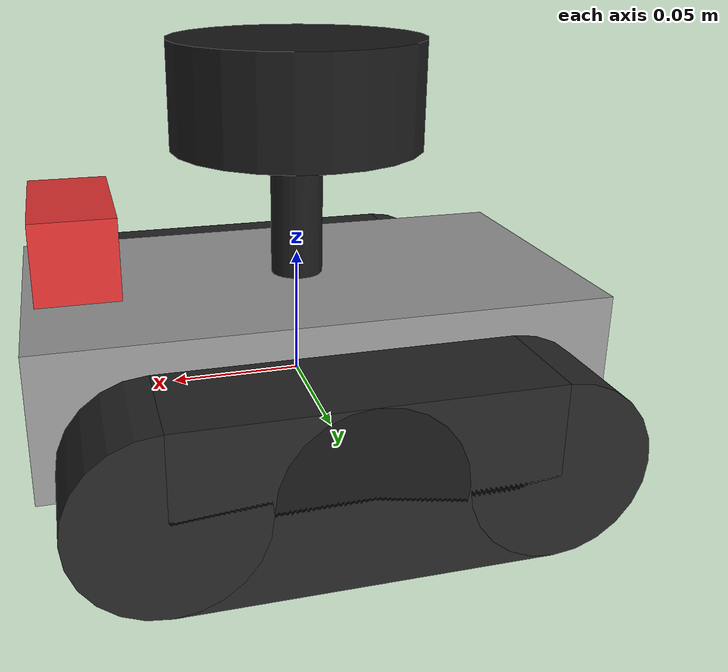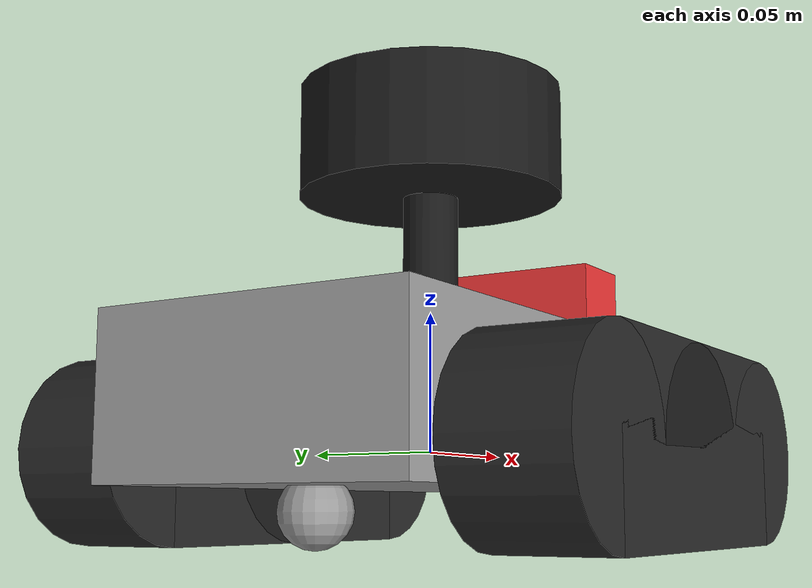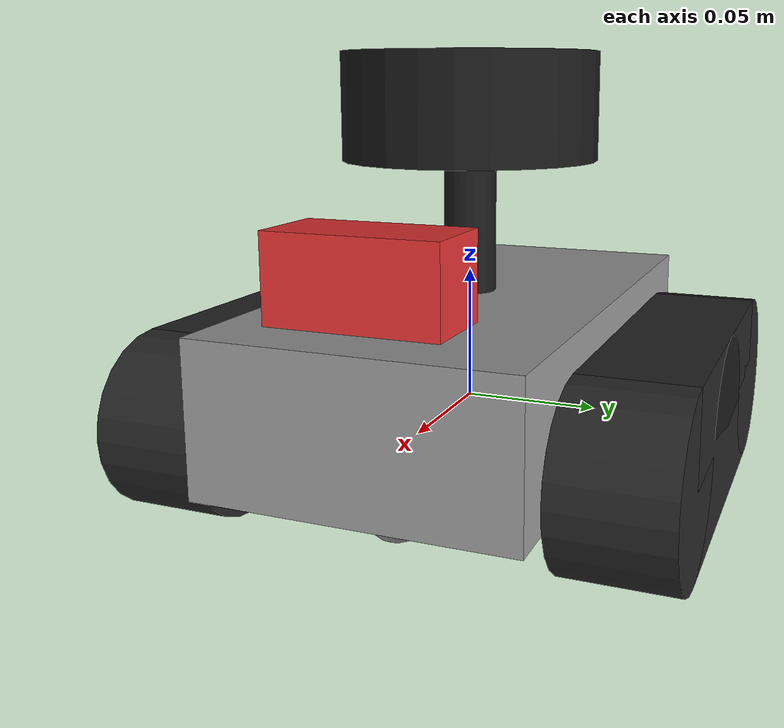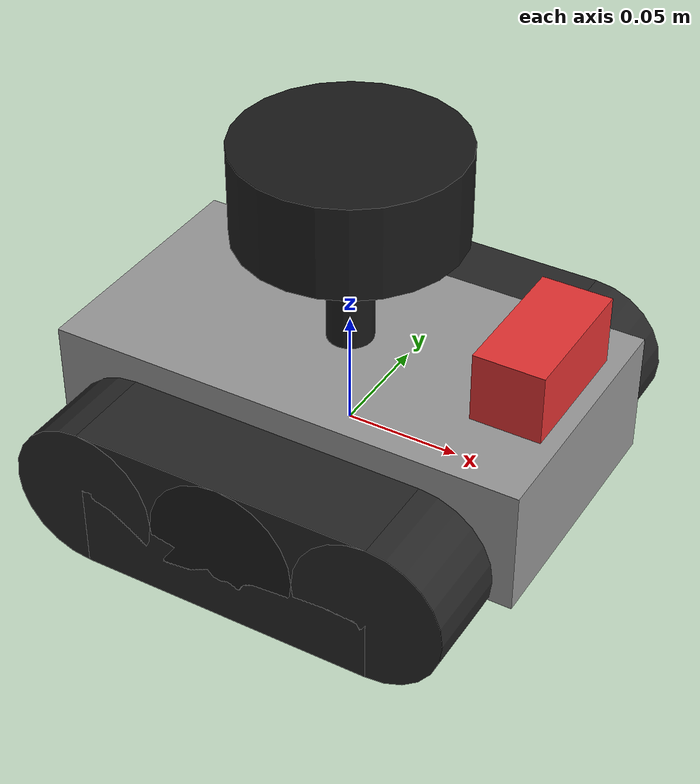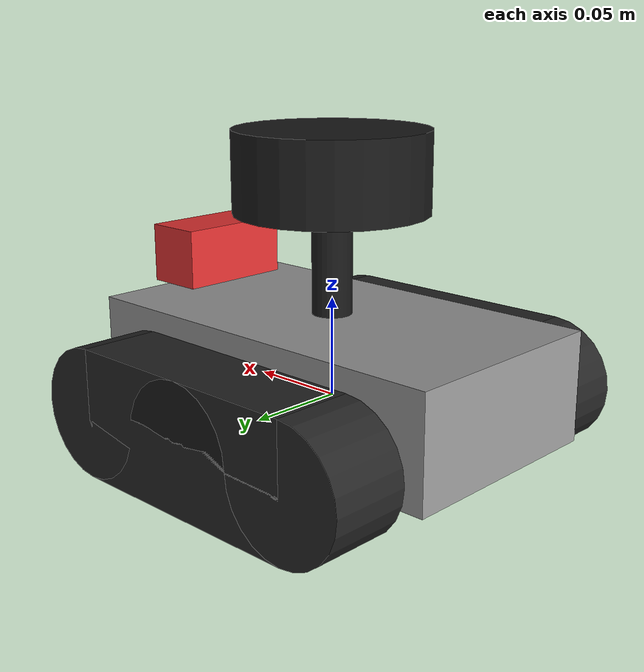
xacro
<?xml version="1.0"?>
<robot xmlns:xacro="http://www.ros.org/wiki/xacro" name="robot">

    <!-- ============================================================
          REAL TANK MEASUREMENTS (all in METRES)
         ============================================================ -->
    <xacro:property name="track_length"     value="0.195"/>
    <xacro:property name="track_width"      value="0.04"/>
    <xacro:property name="track_height"     value="0.065"/>
    <xacro:property name="track_separation" value="0.16"/>

    <xacro:property name="body_length"      value="0.21"/>
    <xacro:property name="body_width"       value="0.115"/>
    <xacro:property name="body_height"      value="0.055"/>
    <xacro:property name="ground_clearance" value="0.02"/>
    <xacro:property name="body_mass"        value="1.0"/>

    <!-- Calculated from the numbers above. Do not edit. -->
    <xacro:property name="wheel_radius"     value="${track_height/2}"/>
    <xacro:property name="skid_radius"      value="0.012"/>
    <xacro:property name="body_z"           value="${-wheel_radius + ground_clearance + body_height/2}"/>
    <xacro:property name="body_top_z"       value="${-wheel_radius + ground_clearance + body_height}"/>

    <!-- ===== Colours ===== -->
    <material name="blue"><color rgba="0.2 0.4 0.9 1"/></material>
    <material name="black"><color rgba="0.1 0.1 0.1 1"/></material>
    <material name="red"><color rgba="0.9 0.2 0.2 1"/></material>
    <material name="gray"><color rgba="0.6 0.6 0.6 1"/></material>
    <material name="dark"><color rgba="0.15 0.15 0.15 1"/></material>

    <!-- ===== Helper macros for inertia ===== -->
    <xacro:macro name="box_inertia" params="m x y z">
        <inertia ixx="${m*(y*y+z*z)/12}" ixy="0" ixz="0"
                 iyy="${m*(x*x+z*z)/12}" iyz="0"
                 izz="${m*(x*x+y*y)/12}"/>
    </xacro:macro>

    <xacro:macro name="cylinder_inertia" params="m r h">
        <inertia ixx="${m*(3*r*r+h*h)/12}" ixy="0" ixz="0"
                 iyy="${m*(3*r*r+h*h)/12}" iyz="0"
                 izz="${m*r*r/2}"/>
    </xacro:macro>

    <!-- ===== BODY ===== -->
    <link name="base_link">
        <visual>
            <origin xyz="0 0 ${body_z}"/>
            <geometry><box size="${body_length} ${body_width} ${body_height}"/></geometry>
            <material name="gray"/>
        </visual>
        <collision>
            <origin xyz="0 0 ${body_z}"/>
            <geometry><box size="${body_length} ${body_width} ${body_height}"/></geometry>
        </collision>
        <inertial>
            <origin xyz="0 0 ${body_z}"/>
            <mass value="${body_mass}"/>
            <xacro:box_inertia m="${body_mass}" x="${body_length}" y="${body_width}" z="${body_height}"/>
        </inertial>

        <!-- post that holds the lidar above the body (visual only) -->
        <visual>
            <origin xyz="0 0 ${body_top_z + 0.025}"/>
            <geometry><cylinder radius="0.01" length="0.05"/></geometry>
            <material name="black"/>
        </visual>
    </link>

    <!-- ===== SKIDS (two small frictionless balls, front and back) ===== -->
    <joint name="front_skid_joint" type="fixed">
        <parent link="base_link"/>
        <child link="front_skid"/>
        <origin xyz="${track_length/2 - 0.03} 0 ${-wheel_radius + skid_radius}"/>
    </joint>

    <link name="front_skid">
        <visual>
            <geometry><sphere radius="${skid_radius}"/></geometry>
            <material name="gray"/>
        </visual>
        <collision>
            <geometry><sphere radius="${skid_radius}"/></geometry>
        </collision>
        <inertial>
            <mass value="0.02"/>
            <inertia ixx="1.2e-6" ixy="0" ixz="0" iyy="1.2e-6" iyz="0" izz="1.2e-6"/>
        </inertial>
    </link>

    <joint name="back_skid_joint" type="fixed">
        <parent link="base_link"/>
        <child link="back_skid"/>
        <origin xyz="${-(track_length/2 - 0.03)} 0 ${-wheel_radius + skid_radius}"/>
    </joint>

    <link name="back_skid">
        <visual>
            <geometry><sphere radius="${skid_radius}"/></geometry>
            <material name="gray"/>
        </visual>
        <collision>
            <geometry><sphere radius="${skid_radius}"/></geometry>
        </collision>
        <inertial>
            <mass value="0.02"/>
            <inertia ixx="1.2e-6" ixy="0" ixz="0" iyy="1.2e-6" iyz="0" izz="1.2e-6"/>
        </inertial>
    </link>
    <!-- ===== DRIVE WHEELS (hidden inside the tracks) ===== -->
    <joint name="left_wheel_joint" type="continuous">
        <parent link="base_link"/>
        <child link="left_wheel"/>
        <origin xyz="0 ${track_separation/2} 0" rpy="-1.5708 0 0"/>
        <axis xyz="0 0 1"/>
    </joint>

    <link name="left_wheel">
        <visual>
            <geometry><cylinder radius="${wheel_radius}" length="${track_width}"/></geometry>
            <material name="black"/>
        </visual>
        <collision>
            <geometry><cylinder radius="${wheel_radius}" length="${track_width}"/></geometry>
        </collision>
        <inertial>
            <mass value="0.1"/>
            <xacro:cylinder_inertia m="0.1" r="${wheel_radius}" h="${track_width}"/>
        </inertial>
    </link>

    <joint name="right_wheel_joint" type="continuous">
        <parent link="base_link"/>
        <child link="right_wheel"/>
        <origin xyz="0 ${-track_separation/2} 0" rpy="1.5708 0 0"/>
        <axis xyz="0 0 -1"/>
    </joint>

    <link name="right_wheel">
        <visual>
            <geometry><cylinder radius="${wheel_radius}" length="${track_width}"/></geometry>
            <material name="black"/>
        </visual>
        <collision>
            <geometry><cylinder radius="${wheel_radius}" length="${track_width}"/></geometry>
        </collision>
        <inertial>
            <mass value="0.1"/>
            <xacro:cylinder_inertia m="0.1" r="${wheel_radius}" h="${track_width}"/>
        </inertial>
    </link>

    <!-- ===== TRACKS (looks only, no collision) ===== -->
    <xacro:macro name="track" params="name y">
        <joint name="${name}_track_joint" type="fixed">
            <parent link="base_link"/>
            <child link="${name}_track"/>
            <origin xyz="0 ${y} 0"/>
        </joint>

        <link name="${name}_track">
            <visual>
                <geometry><box size="${track_length - 2*wheel_radius} ${track_width} ${track_height}"/></geometry>
                <material name="dark"/>
            </visual>
            <visual>
                <origin xyz="${track_length/2 - wheel_radius} 0 0" rpy="1.5708 0 0"/>
                <geometry><cylinder radius="${wheel_radius}" length="${track_width}"/></geometry>
                <material name="dark"/>
            </visual>
            <visual>
                <origin xyz="${-(track_length/2 - wheel_radius)} 0 0" rpy="1.5708 0 0"/>
                <geometry><cylinder radius="${wheel_radius}" length="${track_width}"/></geometry>
                <material name="dark"/>
            </visual>
            <inertial>
                <mass value="0.001"/>
                <inertia ixx="1e-6" ixy="0" ixz="0" iyy="1e-6" iyz="0" izz="1e-6"/>
            </inertial>
        </link>
    </xacro:macro>

    <xacro:track name="left"  y="${track_separation/2}"/>
    <xacro:track name="right" y="${-track_separation/2}"/>

    <!-- ===== CAMERA (front, on top of the body) ===== -->
    <joint name="camera_joint" type="fixed">
        <parent link="base_link"/>
        <child link="camera_link"/>
        <origin xyz="${body_length/2 - 0.02} 0 ${body_top_z + 0.02}"/>
    </joint>

    <link name="camera_link">
        <visual>
            <geometry><box size="0.03 0.06 0.03"/></geometry>
            <material name="red"/>
        </visual>
        <inertial>
            <mass value="0.02"/>
            <xacro:box_inertia m="0.02" x="0.03" y="0.06" z="0.03"/>
        </inertial>
    </link>

    <joint name="camera_optical_joint" type="fixed">
        <parent link="camera_link"/>
        <child link="camera_link_optical"/>
        <origin xyz="0 0 0" rpy="-1.5707963 0 -1.5707963"/>
    </joint>

    <link name="camera_link_optical"></link>

    <!-- ===== LIDAR (RPLIDAR A1) ===== -->
    <joint name="laser_joint" type="fixed">
        <parent link="base_link"/>
        <child link="laser_frame"/>
        <origin xyz="0 0 ${body_top_z + 0.07}" rpy="0 0 0"/>
    </joint>

    <link name="laser_frame">
        <visual>
            <geometry><cylinder radius="0.048" length="0.04"/></geometry>
            <material name="black"/>
        </visual>
        <collision>
            <geometry><cylinder radius="0.048" length="0.04"/></geometry>
        </collision>
        <inertial>
            <mass value="0.17"/>
            <xacro:cylinder_inertia m="0.17" r="0.048" h="0.04"/>
        </inertial>
    </link>

    <!-- ===== GAZEBO SETTINGS ===== -->
    <!-- base_link only touches the ground with the two skids, so low friction here -->
    <gazebo reference="base_link">
        <material>Gazebo/Grey</material>
        <mu1>0.001</mu1>
        <mu2>0.001</mu2>
    </gazebo>

    <gazebo reference="front_skid">
        <material>Gazebo/Grey</material>
        <mu1>0.001</mu1>
        <mu2>0.001</mu2>
    </gazebo>

    <gazebo reference="back_skid">
        <material>Gazebo/Grey</material>
        <mu1>0.001</mu1>
        <mu2>0.001</mu2>
    </gazebo>

    <gazebo reference="left_track">
        <material>Gazebo/DarkGrey</material>
    </gazebo>

    <gazebo reference="right_track">
        <material>Gazebo/DarkGrey</material>
    </gazebo>

    <gazebo reference="camera_link">
        <material>Gazebo/Red</material>
    </gazebo>

    <gazebo reference="laser_frame">
        <material>Gazebo/Black</material>
    </gazebo>

    <!-- ===== DRIVE PLUGIN ===== -->
    <gazebo>
        <plugin name="diff_drive" filename="libgazebo_ros_diff_drive.so">
            <left_joint>left_wheel_joint</left_joint>
            <right_joint>right_wheel_joint</right_joint>
            <wheel_separation>${track_separation}</wheel_separation>
            <wheel_diameter>${2*wheel_radius}</wheel_diameter>
            <max_wheel_torque>3</max_wheel_torque>
            <max_wheel_acceleration>15.0</max_wheel_acceleration>
            <odometry_frame>odom</odometry_frame>
            <robot_base_frame>base_link</robot_base_frame>
            <publish_odom>true</publish_odom>
            <publish_odom_tf>true</publish_odom_tf>
            <publish_wheel_tf>true</publish_wheel_tf>
        </plugin>
    </gazebo>

    <!-- ===== CAMERA SENSOR ===== -->
    <gazebo reference="camera_link">
        <sensor name="camera" type="camera">
            <pose>0 0 0 0 0 0</pose>
            <visualize>true</visualize>
            <update_rate>10</update_rate>
            <camera>
                <horizontal_fov>1.089</horizontal_fov>
                <image>
                    <format>R8G8B8</format>
                    <width>320</width>
                    <height>240</height>
                </image>
                <clip>
                    <near>0.05</near>
                    <far>8.0</far>
                </clip>
            </camera>
            <plugin name="camera_controller" filename="libgazebo_ros_camera.so">
                <frame_name>camera_link_optical</frame_name>
            </plugin>
        </sensor>
    </gazebo>

    <!-- ===== LIDAR SENSOR (RPLIDAR A1: 0.15 m to 12 m) ===== -->
    <gazebo reference="laser_frame">
        <sensor name="laser" type="ray">
            <pose>0 0 0 0 0 0</pose>
            <visualize>false</visualize>
            <update_rate>10</update_rate>
            <ray>
                <scan>
                    <horizontal>
                        <samples>360</samples>
                        <min_angle>-3.14</min_angle>
                        <max_angle>3.14</max_angle>
                    </horizontal>
                </scan>
                <range>
                    <min>0.15</min>
                    <max>12</max>
                </range>
            </ray>
            <plugin name="laser_controller" filename="libgazebo_ros_ray_sensor.so">
                <ros>
                    <argument>~/out:=scan</argument>
                </ros>
                <output_type>sensor_msgs/LaserScan</output_type>
                <frame_name>laser_frame</frame_name>
            </plugin>
        </sensor>
    </gazebo>

</robot>
